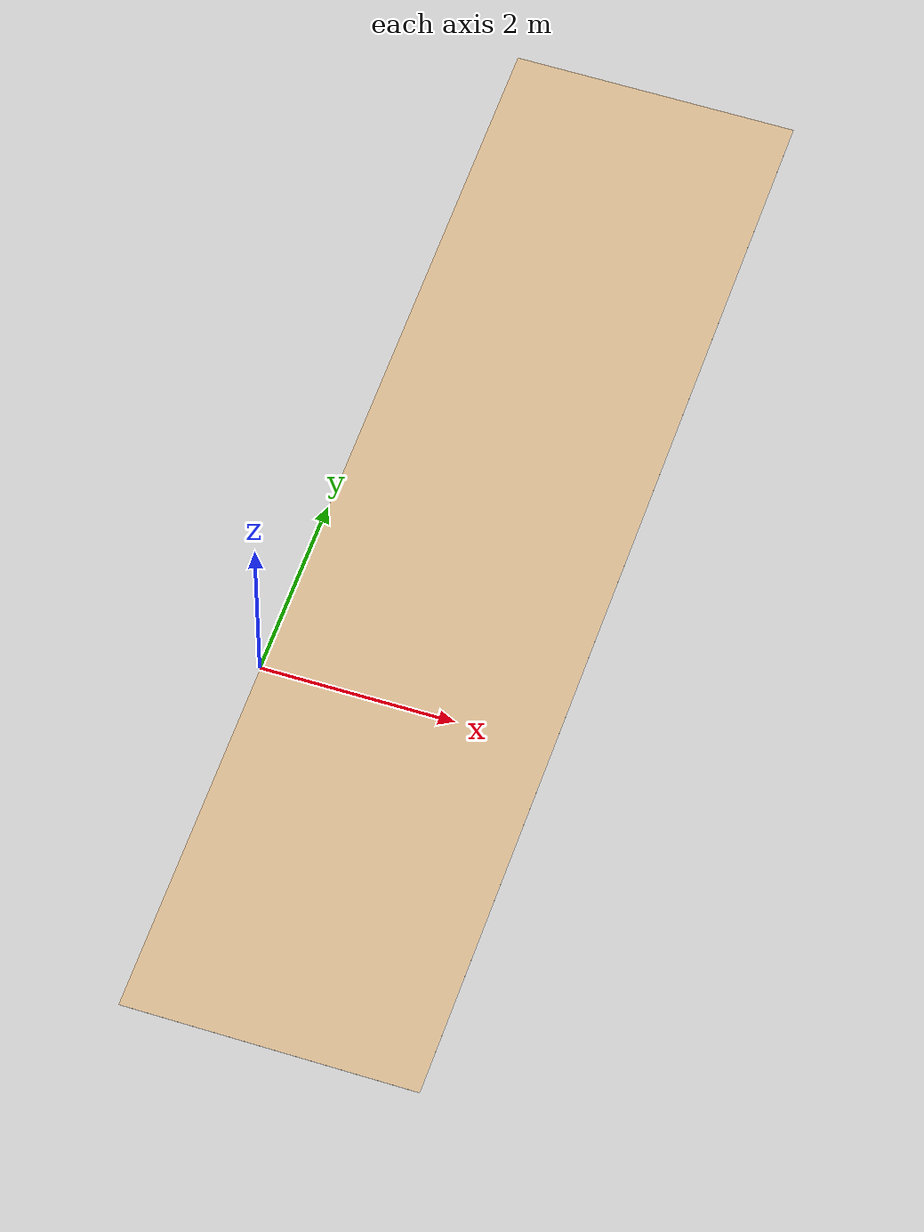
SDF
<?xml version="1.0" ?>
<!-- tmp sdf file generated from LISDF -->
<sdf version="1.9">
  <world name="tmp_world">

<model name="floor#1">
  <static>True</static>
  <pose>1.5 2.0 -0.0020000000949949026 0.0 -0.0 0.0</pose>
  <link name="box">

    <inertial>
      <mass>0</mass>
      <pose>0.0 0.0 0.0 0.0 -0.0 0.0</pose>
      <inertia>
        <ixx>0</ixx>
        <ixy>0</ixy>
        <ixz>0</ixz>
        <iyy>0</iyy>
        <iyz>0</iyz>
        <izz>0</izz>
      </inertia>
    </inertial>
    <collision name="box_collision">>
      <pose>0.0 0.0 0.0 0.0 -0.0 0.0</pose>
      <geometry>
        <box>
          <size>3.0 12.0 0.0010000000474974513</size>
        </box>
      </geometry>

    </collision>
    <visual name="box_visual">
      <pose>0.0 0.0 0.0 0.0 -0.0 0.0</pose>
      <geometry>
        <box>
          <size>3.0 12.0 0.0010000000474974513</size>
        </box>
      </geometry>
      <material>
        <ambient>1.0 1.0 1.0 1.0</ambient>
        <diffuse>0.8240000009536743 0.7059999704360962 0.5490000247955322 1.0</diffuse>
        <specular>0.0 0.0 0.0 1.0</specular>
        <emissive>0.0 0.0 0.0 1.0</emissive>
      </material>
      <cast_shadows>True</cast_shadows>
    </visual>
    <self_collide>True</self_collide>
  </link>

</model>

  </world>
</sdf>
